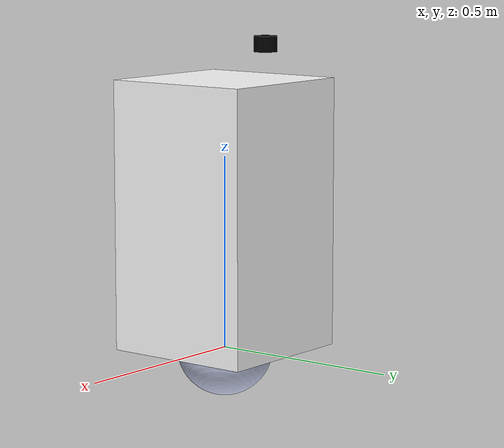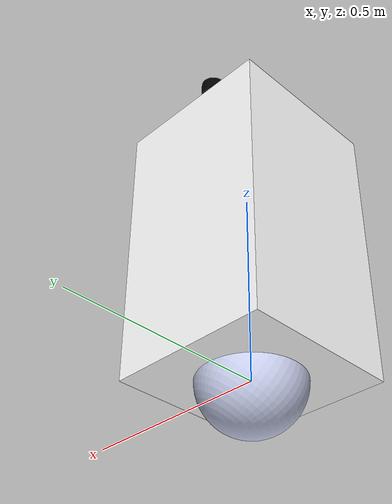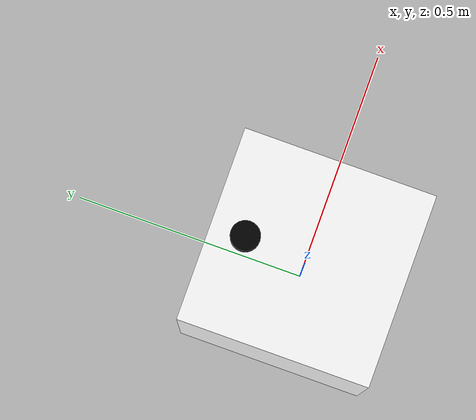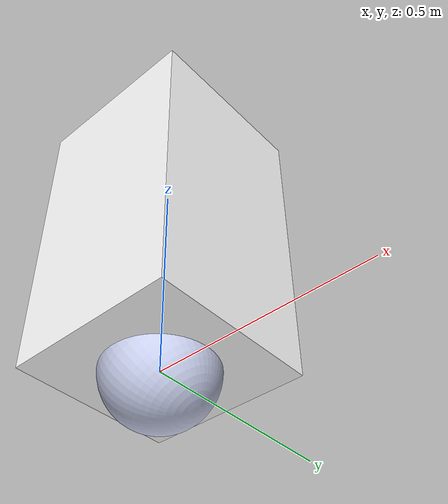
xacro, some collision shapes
<?xml version="1.0" encoding="utf-8"?>
<robot name="ballbot_gp" xmlns:xacro="http://ros.org/wiki/xacro">

  <xacro:include filename="$(find gp_description)/urdf/ballbot1_ros2_control.xacro" />

  <material name="black">
    <color rgba="0.0 0.0 0.0 1.0" />
  </material>

  <link name="base_footprint" />

  <joint name="base_joint" type="fixed">
    <parent link="base_footprint" />
    <child link="base_link" />
    <origin xyz="0 0 0" rpy="0 0 0" />
    <parent link="base_footprint" />
    <child link="base_link" />
  </joint>

<link name="base_link">
    <inertial>
      <origin
        xyz="0.00151517619990943 -0.0101643228259927 -1"
        rpy="0 0 0" />
      <mass
        value="9.08011858540185" />
      <inertia
        ixx="0.0572482708377235"
        ixy="-3.72978940239855E-05"
        ixz="1.06107104353966E-06"
        iyy="0.0578290554016623"
        iyz="2.4059994308814E-07"
        izz="0.0264771195240326" />
    </inertial>
    <visual>
      <origin
        xyz="0 0 0"
        rpy="0 0 0" />
      <geometry>
        <mesh
          filename="package://gp_description/meshes/base_link.STL" />
      </geometry>
      <material
        name="">
        <color
          rgba="1 1 1 1" />
      </material>
    </visual>
    <collision>
      <origin xyz="0 0 0.35" rpy="0 0 0"/>
      <geometry>
        <box size="0.40 0.40 0.70"/>
      </geometry>
    </collision>
  </link>

  <link name="Sphere">
    <inertial>
      <origin xyz="0 0 0" rpy="0 0 0" />
      <mass value="3" />
      <inertia
        ixx="0.051133" ixy="-3.4559E-18" ixz="-6.9389E-18"
        iyy="0.051133" iyz="-5.6802E-18" izz="0.051133" />
    </inertial>
    <visual>
      <origin xyz="0 0 0" rpy="0 0 0" />
      <geometry>
        <mesh filename="package://gp_description/meshes/Sphere.STL" />
      </geometry>
      <material name="">
        <color rgba="0.79216 0.81961 0.93333 1" />
      </material>
    </visual>
    <collision>
      <origin xyz="0 0 0" rpy="0 0 0" />
      <geometry>
        <sphere radius="0.125" />
      </geometry>
    </collision>
  </link>

<link name="dummy_rx">
    <inertial>
      <origin xyz="0 0 0" rpy="0 0 0" />
      <mass value="0.01" />
      <inertia ixx="1e-6" ixy="0.0" ixz="0.0" iyy="1e-6" iyz="0.0" izz="1e-6" />
    </inertial>
  </link>

  <link name="dummy_ry">
    <inertial>
      <origin xyz="0 0 0" rpy="0 0 0" />
      <mass value="0.01" />
      <inertia ixx="1e-6" ixy="0.0" ixz="0.0" iyy="1e-6" iyz="0.0" izz="1e-6" />
    </inertial>
  </link>

  <joint name="sphere_roll" type="fixed">
    <parent link="base_link"/>
    <child link="dummy_rx"/>
  </joint>
  <joint name="sphere_pitch" type="fixed">
    <parent link="dummy_rx"/>
    <child link="dummy_ry"/>
  </joint>
  <joint name="sphere_yaw" type="fixed">
    <parent link="dummy_ry"/>
    <child link="Sphere"/>
  </joint>

  <link name="wheel1">
    <inertial>
      <origin
        xyz="-0.00953560838269651 5.16370523984122E-05 6.79506333249869E-05"
        rpy="0 0 0" />
      <mass
        value="0.0951143292904188" />
      <inertia
        ixx="4.65646681900449E-05"
        ixy="-1.13818245667006E-11"
        ixz="-1.07929293045948E-12"
        iyy="2.52584891025476E-05"
        iyz="-1.4747785897974E-10"
        izz="2.52591526238032E-05" />
    </inertial>
    <visual>
      <origin
        xyz="0 0 0"
        rpy="0 0 0" />
      <geometry>
        <mesh
          filename="package://gp_description/meshes/wheel1.STL" />
      </geometry>
      <material
        name="">
        <color
          rgba="0.792156862745098 0.819607843137255 0.933333333333333 1" />
      </material>
    </visual>
    <collision>
      <origin
        xyz="0 0 0"
        rpy="0 0 0" />
      <geometry>
        <mesh
          filename="package://gp_description/meshes/wheel1.STL" />
      </geometry>
    </collision>
  </link>

  <joint name="wheel1_joint" type="continuous">
    <origin
      xyz="0.12753 -0.061995 0.10342"
      rpy="-2.8521 0.7854 -0.46799" />
    <parent
      link="base_link" />
    <child
      link="wheel1" />
    <axis
      xyz="-1 0 0" />
    <limit
      effort="5"
      velocity="41.9" />
    <dynamics
      damping="0.5"
      friction="0.5" />
  </joint>

  <link name="wheel2">
    <inertial>
      <origin
        xyz="-0.00953560990942881 3.71902770169852E-05 -7.68172329284056E-05"
        rpy="0 0 0" />
      <mass
        value="0.0951143030835391" />
      <inertia
        ixx="4.65646613426977E-05"
        ixy="3.8456305497048E-12"
        ixz="1.11453090010958E-11"
        iyy="2.5259140158131E-05"
        iyz="-1.81644499264665E-10"
        izz="2.52584940578478E-05" />
    </inertial>
    <visual>
      <origin
        xyz="0 0 0"
        rpy="0 0 0" />
      <geometry>
        <mesh
          filename="package://gp_description/meshes/wheel2.STL" />
      </geometry>
      <material
        name="">
        <color
          rgba="0.792156862745098 0.819607843137255 0.933333333333333 1" />
      </material>
    </visual>
    <collision>
      <origin
        xyz="0 0 0"
        rpy="0 0 0" />
      <geometry>
        <mesh
          filename="package://gp_description/meshes/wheel2.STL" />
      </geometry>
    </collision>
  </link>

  <joint name="wheel2_joint"
    type="continuous">
    <origin
      xyz="-0.0065232 0.14188 0.10313"
      rpy="3.0028 0.7854 1.6264" />
    <parent
      link="base_link" />
    <child
      link="wheel2" />
    <axis
      xyz="-1 0 0" />
    <limit
      effort="5"
      velocity="41.9" />
    <dynamics
      damping="0.5"
      friction="0.5" />
  </joint>

  <link name="wheel3">
    <inertial>
      <origin xyz="-0.0095356 -5.2218E-05 -6.7507E-05" rpy="0 0 0" />
      <mass
        value="0.095114" />
      <inertia
        ixx="4.6565E-05"
        ixy="1.147E-11"
        ixz="1.4905E-12"
        iyy="2.5258E-05"
        iyz="-1.4505E-10"
        izz="2.5259E-05" />
    </inertial>
    <visual>
      <origin
        xyz="0 0 0"
        rpy="0 0 0" />
      <geometry>
        <mesh
          filename="package://gp_description/meshes/wheel3.STL" />
      </geometry>
      <material
        name="">
        <color
          rgba="0.79216 0.81961 0.93333 1" />
      </material>
    </visual>
    <collision>
      <origin
        xyz="0 0 0"
        rpy="0 0 0" />
      <geometry>
        <mesh
          filename="package://gp_description/meshes/wheel3.STL" />
      </geometry>
    </collision>
  </link>

  <joint name="wheel3_joint" type="continuous">
    <origin
      xyz="-0.12507 -0.080662 0.09342"
      rpy="-2.8751 0.7854 -2.5624" />
    <parent
      link="base_link" />
    <child
      link="wheel3" />
    <axis
      xyz="-1 0 0" />
    <limit
      effort="5"
      velocity="41.9" />
    <dynamics
      damping="0.5"
      friction="0.5" />
  </joint>

  <link name="Imu_link">
    <inertial>
      <origin
        xyz="-0.00927185847083811 -0.0178267300579023 -0.0166649394287217"
        rpy="0 0 0" />
      <mass
        value="0.0814778053289413" />
      <inertia
        ixx="6.20244789579876E-05"
        ixy="-1.06699641247436E-06"
        ixz="-3.89503586589482E-07"
        iyy="7.07115732356652E-05"
        iyz="-4.92347837572627E-07"
        izz="0.000131266449910669" />
    </inertial>
    <visual>
      <origin
        xyz="0 0 0"
        rpy="0 0 0" />
      <geometry>
        <mesh
          filename="package://gp_description/meshes/Imu_link.STL" />
      </geometry>
      <material
        name="">
        <color
          rgba="0.792156862745098 0.819607843137255 0.933333333333333 1" />
      </material>
    </visual>
    <collision>
      <origin
        xyz="0 0 0"
        rpy="0 0 0" />
      <geometry>
        <mesh
          filename="package://gp_description/meshes/Imu_link.STL" />
      </geometry>
    </collision>
  </link>

  <joint name="Imu_joint" type="fixed">
    <origin
      xyz="-0.0054505 0.024045 0.37651"
      rpy="0 0 0.013997" />
    <parent
      link="base_link" />
    <child
      link="Imu_link" />
    <axis
      xyz="0 0 0" />
  </joint>

  <link name="laser_link">
    <visual>
      <geometry>
        <cylinder radius="0.03" length="0.04" />
      </geometry>
      <material name="black" />
    </visual>
  </link>

  <joint name="laser_joint" type="fixed">
    <parent link="base_link" />
    <child link="laser_link" />
    <origin xyz="-0.007 0.126 0.7943" rpy="0 0 0" />
  </joint>

</robot>
